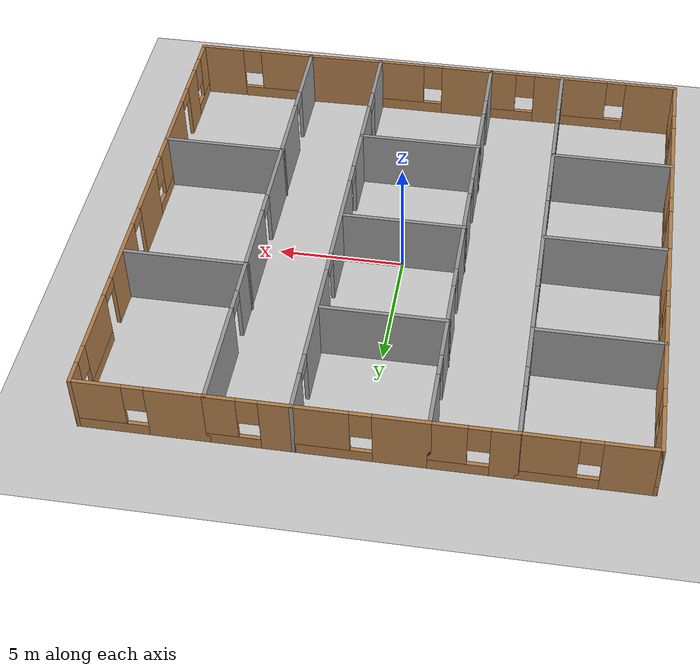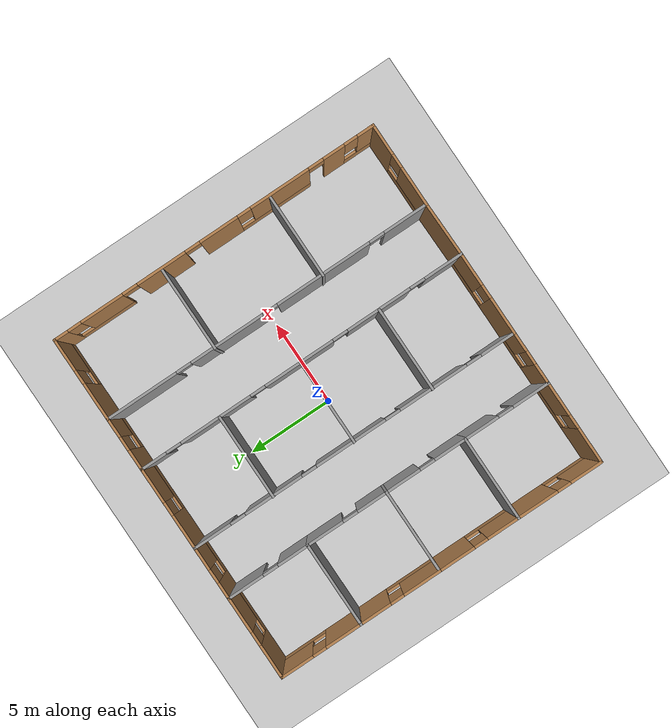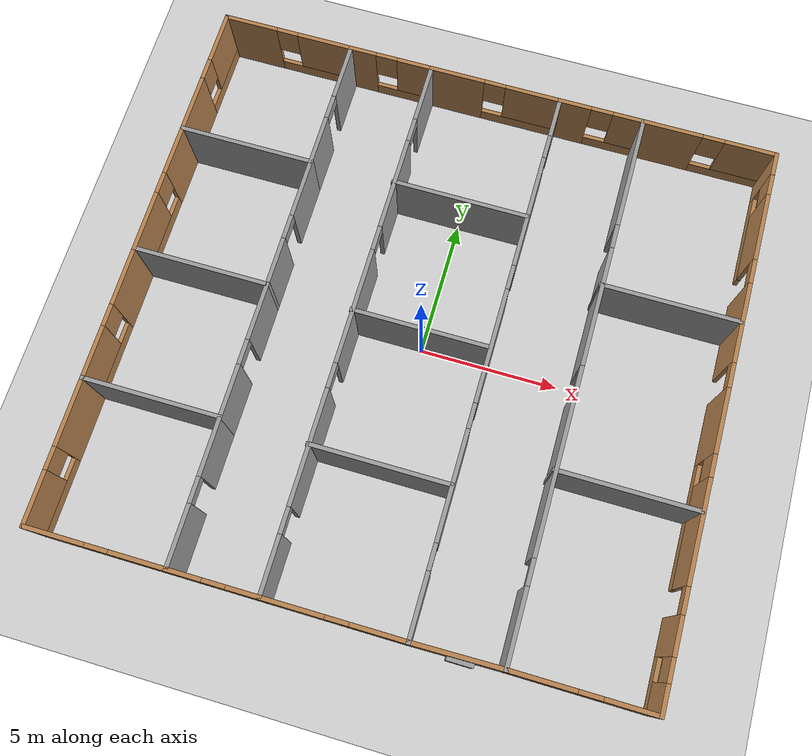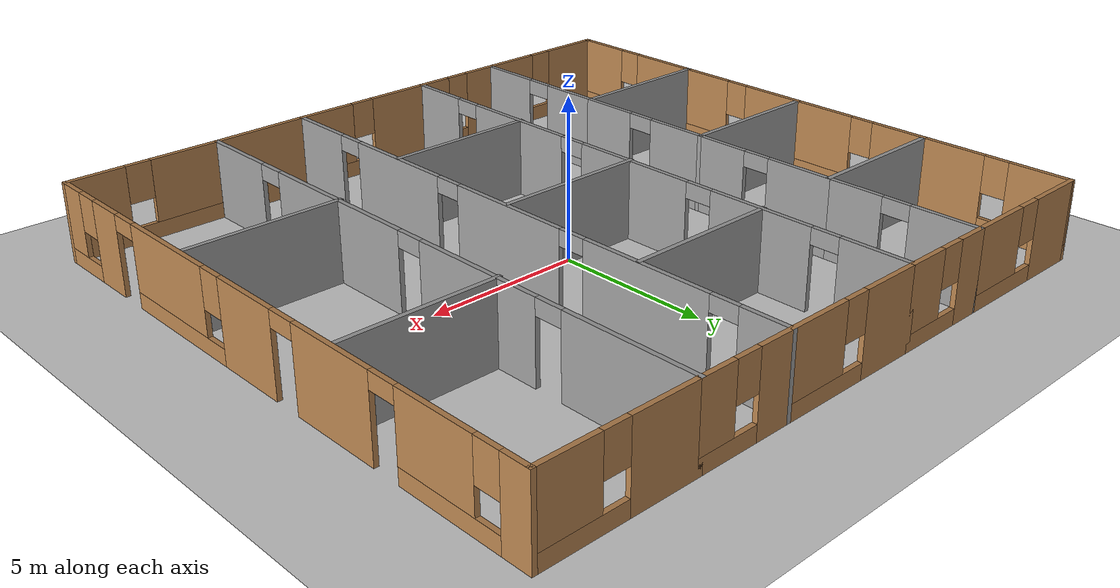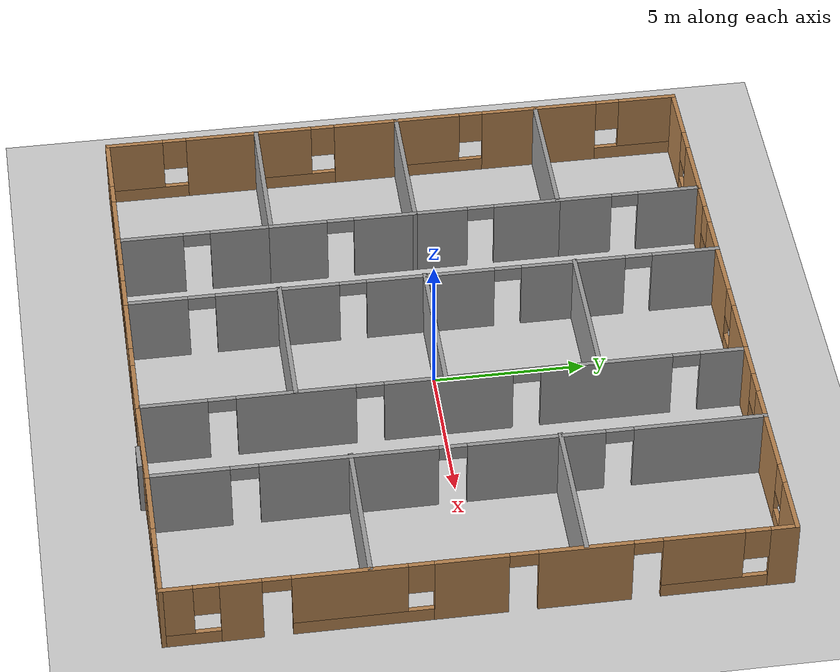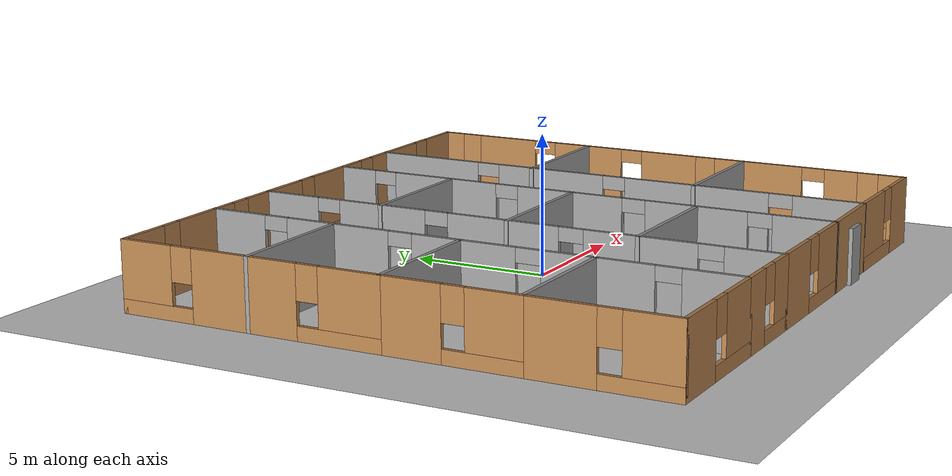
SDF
<sdf version="1.7">
  <world name="hospital_demo">
    <!-- ROS2 + Gazebo classic integration -->
    <plugin name="gazebo_ros_init" filename="libgazebo_ros_init.so"/>
    <plugin name="gazebo_ros_factory" filename="libgazebo_ros_factory.so"/>
    <plugin name="gazebo_ros_state" filename="libgazebo_ros_state.so"/>

    <gravity>0 0 -9.8</gravity>
    <physics type="ode">
      <max_step_size>0.001</max_step_size>
      <real_time_factor>1</real_time_factor>
      <real_time_update_rate>1000</real_time_update_rate>
    </physics>

    <scene>
      <ambient>0.4 0.4 0.4 1</ambient>
      <background>0.7 0.7 0.7 1</background>
      <shadows>1</shadows>
    </scene>

    <light name="sun" type="directional">
      <cast_shadows>1</cast_shadows>
      <pose>0 0 10 0 0 0</pose>
      <diffuse>0.8 0.8 0.8 1</diffuse>
      <specular>0.2 0.2 0.2 1</specular>
      <attenuation>
        <range>1000</range>
        <constant>0.9</constant>
        <linear>0.01</linear>
        <quadratic>0.001</quadratic>
      </attenuation>
      <direction>-0.5 0.1 -0.9</direction>
    </light>

    <model name="ground_plane">
      <static>1</static>
      <link name="link">
        <collision name="collision">
          <geometry>
            <plane>
              <normal>0 0 1</normal>
              <size>100 100</size>
            </plane>
          </geometry>
        </collision>
        <visual name="visual">
          <cast_shadows>0</cast_shadows>
          <geometry>
            <plane>
              <normal>0 0 1</normal>
              <size>100 100</size>
            </plane>
          </geometry>
          <material>
            <script>
              <uri>file://media/materials/scripts/gazebo.material</uri>
              <name>Gazebo/Grey</name>
            </script>
          </material>
        </visual>
      </link>
    </model>

    <!-- Hospital layout (walls/doors/rooms) -->
    <include>
      <uri>model://hospital_floor_v2</uri>
      <name>hospital_floor</name>
      <pose>0 0 0 0 0 0</pose>
    </include>
  </world>
</sdf>
